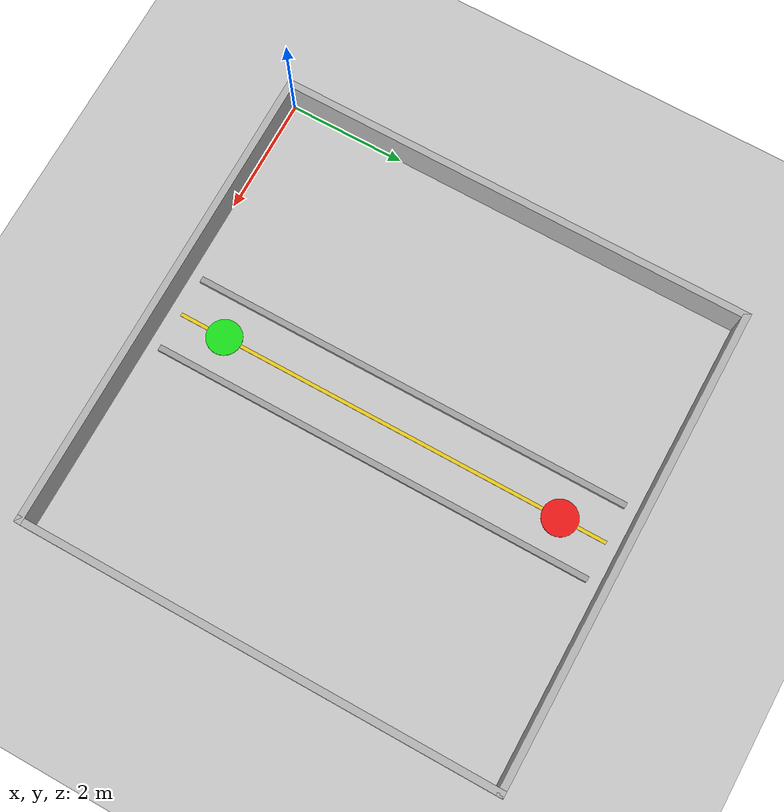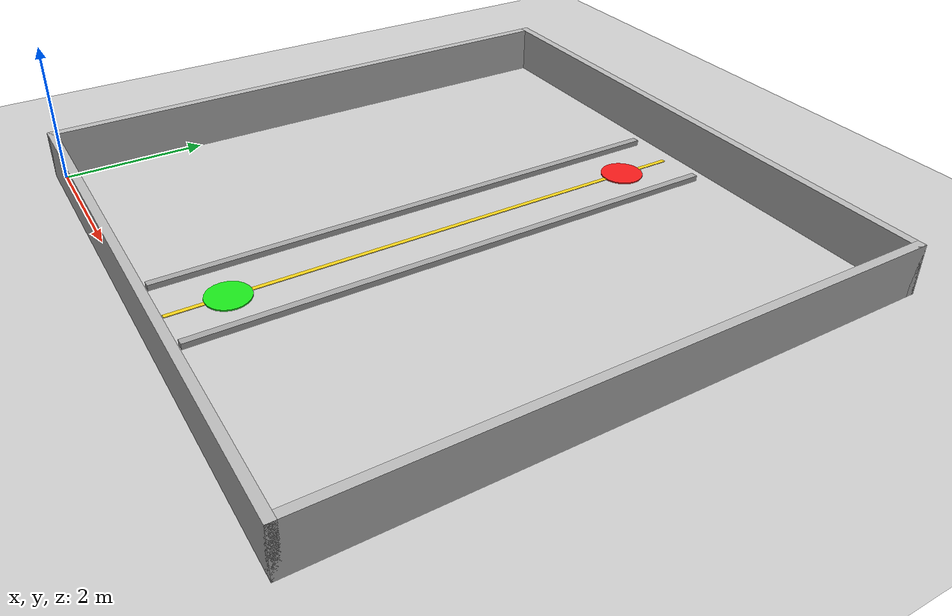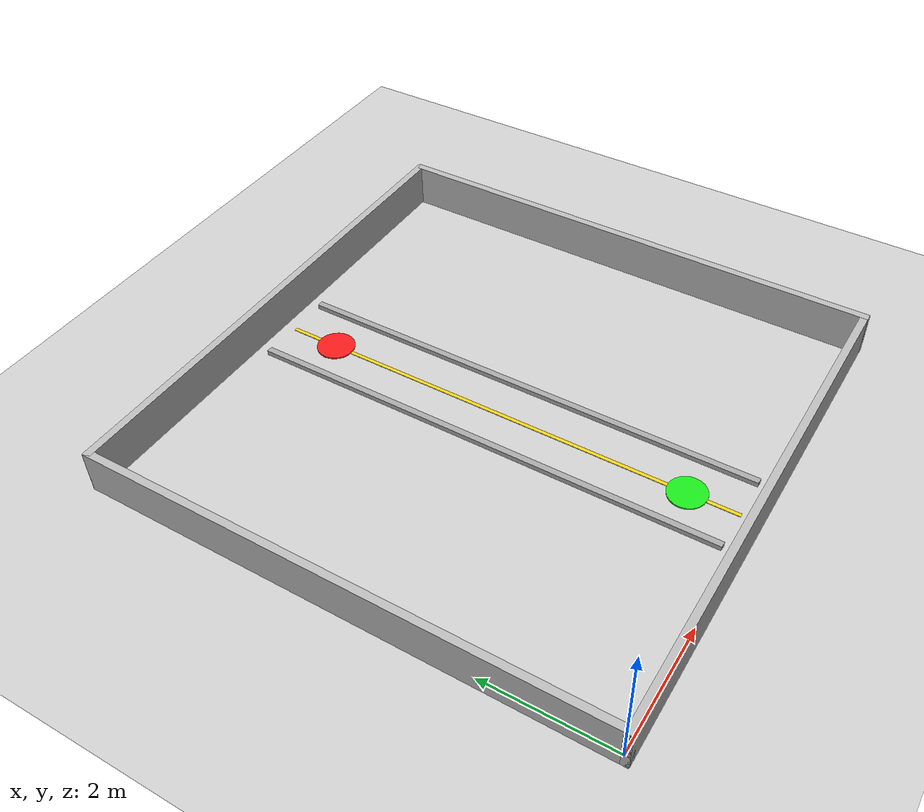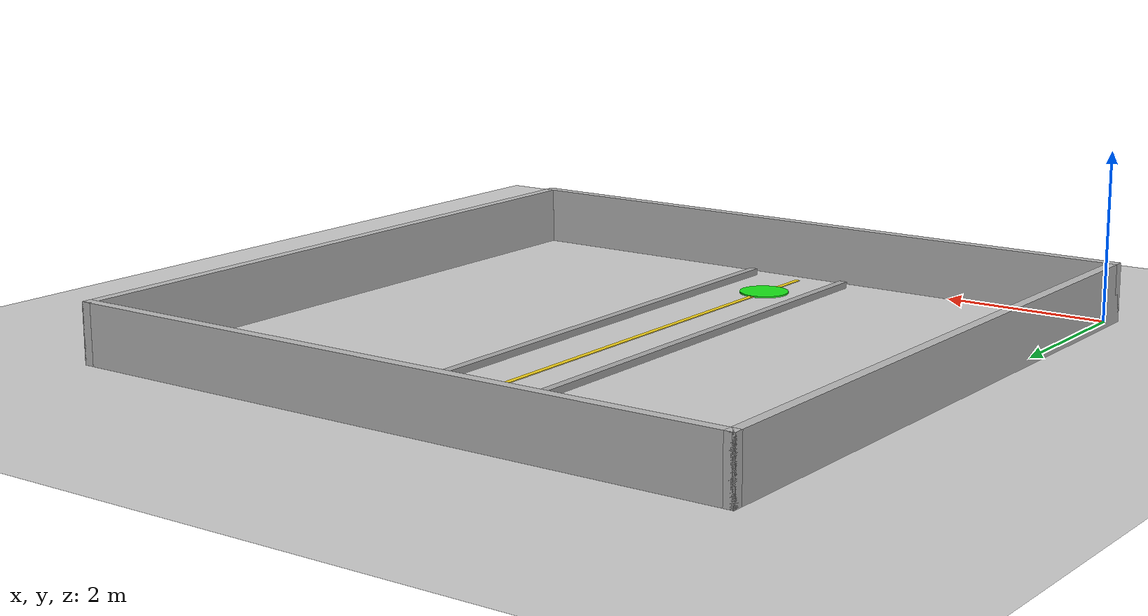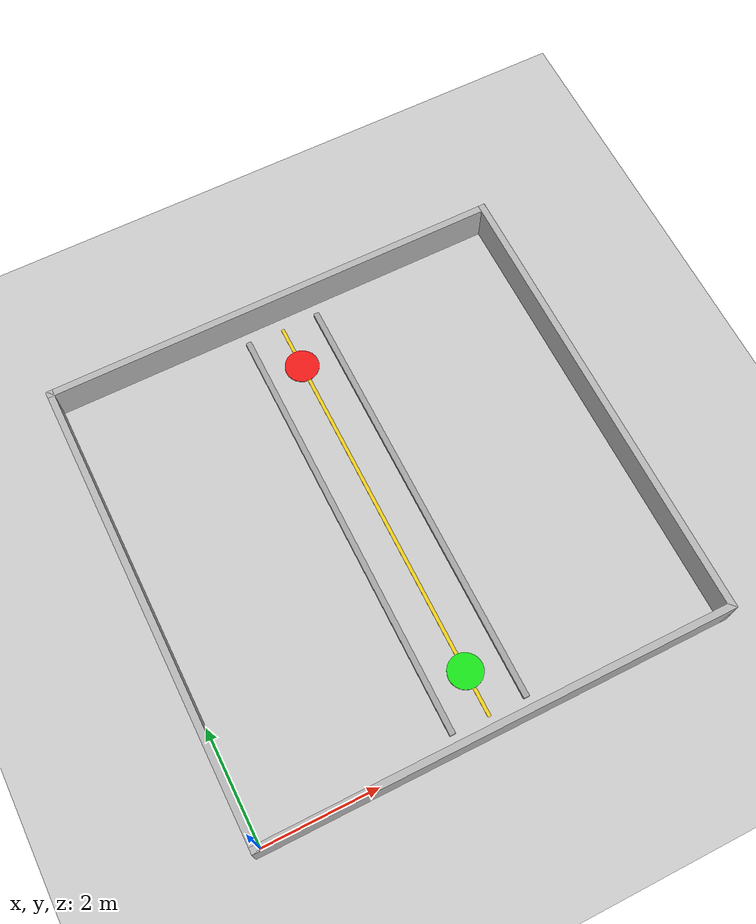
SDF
<?xml version="1.0" ?>
<sdf version="1.6">
  <world name="level0_road_straight_8x8">
    <gravity>0 0 -9.8</gravity>
    <physics type="ode">
      <max_step_size>0.001</max_step_size>
      <real_time_factor>1.0</real_time_factor>
      <real_time_update_rate>1000</real_time_update_rate>
    </physics>

    <plugin name="gazebo_ros_state" filename="libgazebo_ros_state.so">
      <update_rate>50.0</update_rate>
    </plugin>

    <include><uri>model://sun</uri></include>
    <include><uri>model://ground_plane</uri></include>

    <!-- Outer walls (same dimensions as arena_8x8) -->
    <model name="a8_wall_south"><static>true</static><pose>4.0 -0.06 0.35 0 0 0</pose>
      <link name="link">
        <collision name="c"><geometry><box><size>8.24 0.12 0.7</size></box></geometry></collision>
        <visual name="v"><geometry><box><size>8.24 0.12 0.7</size></box></geometry></visual>
      </link>
    </model>
    <model name="a8_wall_north"><static>true</static><pose>4.0 8.06 0.35 0 0 0</pose>
      <link name="link">
        <collision name="c"><geometry><box><size>8.24 0.12 0.7</size></box></geometry></collision>
        <visual name="v"><geometry><box><size>8.24 0.12 0.7</size></box></geometry></visual>
      </link>
    </model>
    <model name="a8_wall_west"><static>true</static><pose>-0.06 4.0 0.35 0 0 0</pose>
      <link name="link">
        <collision name="c"><geometry><box><size>0.12 8.24 0.7</size></box></geometry></collision>
        <visual name="v"><geometry><box><size>0.12 8.24 0.7</size></box></geometry></visual>
      </link>
    </model>
    <model name="a8_wall_east"><static>true</static><pose>8.06 4.0 0.35 0 0 0</pose>
      <link name="link">
        <collision name="c"><geometry><box><size>0.12 8.24 0.7</size></box></geometry></collision>
        <visual name="v"><geometry><box><size>0.12 8.24 0.7</size></box></geometry></visual>
      </link>
    </model>

    <!-- Road geometry -->
    <!-- Road center: x=4.0, along y. Road half width = 0.65 (total 1.30m) -->
    <!-- Curbs: width 0.10m, height 0.08m, length 7.6m (from y=0.2 to 7.8) -->
    <model name="road_curb_left"><static>true</static><pose>3.35 4.0 0.04 0 0 0</pose>
      <link name="link">
        <collision name="c"><geometry><box><size>0.10 7.60 0.08</size></box></geometry></collision>
        <visual name="v"><geometry><box><size>0.10 7.60 0.08</size></box></geometry>
          <material><ambient>0.55 0.55 0.55 1</ambient><diffuse>0.65 0.65 0.65 1</diffuse></material>
        </visual>
      </link>
    </model>
    <model name="road_curb_right"><static>true</static><pose>4.65 4.0 0.04 0 0 0</pose>
      <link name="link">
        <collision name="c"><geometry><box><size>0.10 7.60 0.08</size></box></geometry></collision>
        <visual name="v"><geometry><box><size>0.10 7.60 0.08</size></box></geometry>
          <material><ambient>0.55 0.55 0.55 1</ambient><diffuse>0.65 0.65 0.65 1</diffuse></material>
        </visual>
      </link>
    </model>

    <!-- Yellow center line (visual only) -->
    <model name="road_center_yellow"><static>true</static><pose>4.0 4.0 0.005 0 0 0</pose>
      <link name="link">
        <visual name="v">
          <geometry><box><size>0.06 7.60 0.01</size></box></geometry>
          <material><ambient>0.90 0.75 0.05 1</ambient><diffuse>0.95 0.82 0.10 1</diffuse></material>
        </visual>
      </link>
    </model>

    <!-- Start/goal markers aligned to road center -->
    <model name="road_start_marker"><static>true</static><pose>4.0 1.0 0.01 0 0 0</pose>
      <link name="link"><visual name="visual"><geometry><cylinder><radius>0.30</radius><length>0.02</length></cylinder></geometry>
        <material><ambient>0.1 0.8 0.1 1</ambient><diffuse>0.1 0.9 0.1 1</diffuse></material></visual></link></model>
    <model name="road_goal_marker"><static>true</static><pose>4.0 7.0 0.01 0 0 0</pose>
      <link name="link"><visual name="visual"><geometry><cylinder><radius>0.30</radius><length>0.02</length></cylinder></geometry>
        <material><ambient>0.85 0.1 0.1 1</ambient><diffuse>0.95 0.1 0.1 1</diffuse></material></visual></link></model>

    <gui fullscreen="0"><camera name="user_camera"><pose>4 -9 12 0 0.52 1.57</pose></camera></gui>
  </world>
</sdf>
